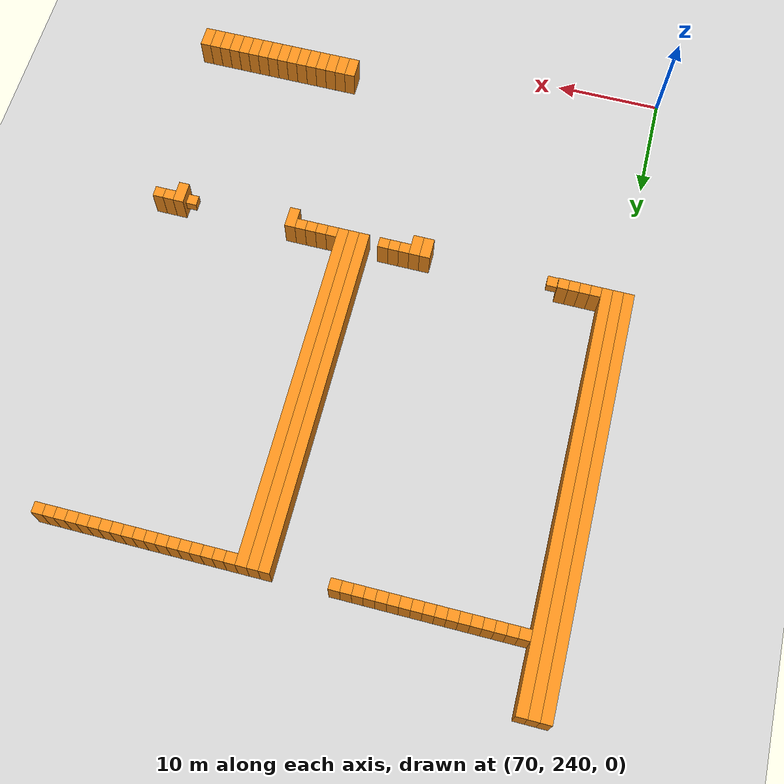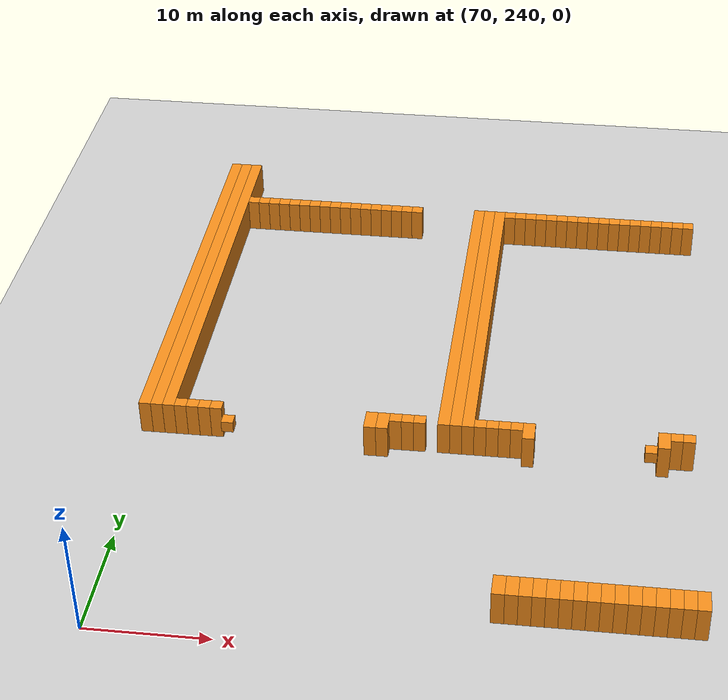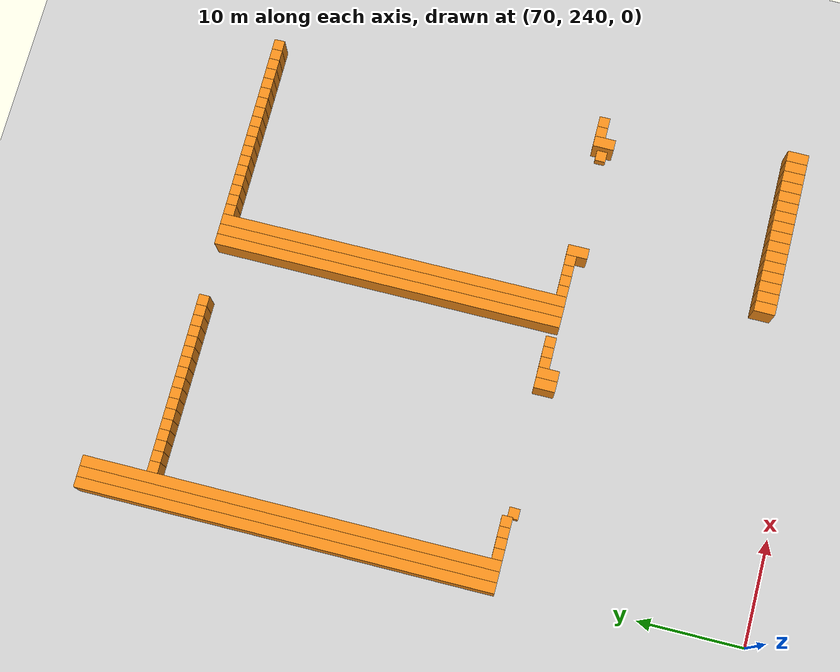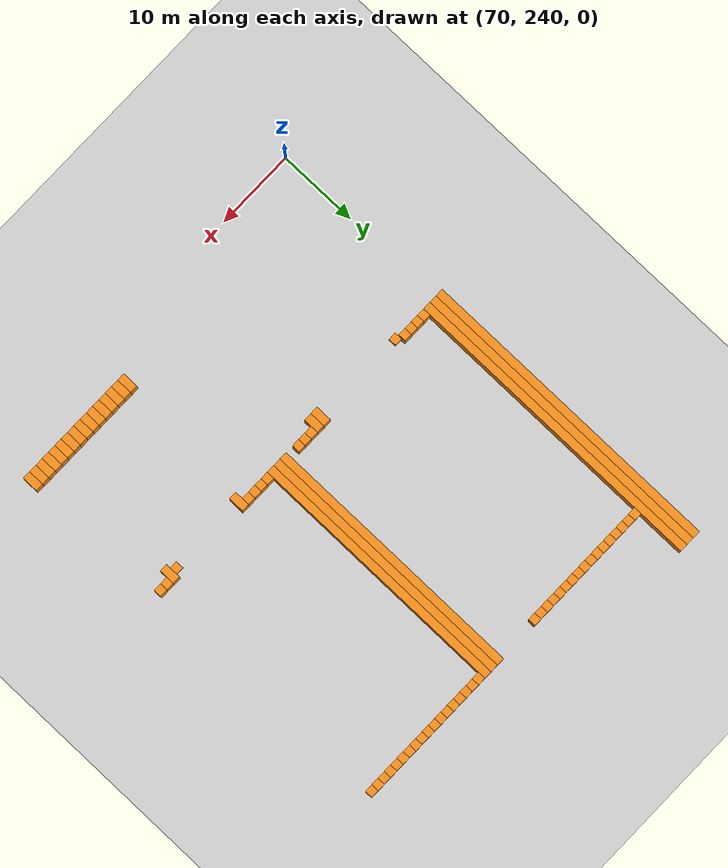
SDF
<sdf version="1.6">
 <world name="default">
  <include><uri>model://ground_plane</uri></include>
  <model name="unit_box_750">
   <pose>69.50   282.50     1.50 0 0 0</pose>
   <static>1</static>
   <link name="link">
    <inertial>
     <mass>5000</mass>
     <inertia><ixx>200</ixx><ixy>0</ixy><ixz>0</ixz><iyy>200</iyy><iyz>0</iyz><izz>200</izz></inertia>
    </inertial>
    <collision name="collision"><geometry><box><size>1 39 3</size></box></geometry></collision>
    <visual name="visual">
     <geometry><box><size>1 39 3</size></box></geometry>
     <material>
      <script><name>Gazebo/Orange</name><uri>file://media/materials/scripts/gazebo.material</uri></script>
     </material>
    </visual>
   </link>
  </model>
  <model name="unit_box_762">
   <pose>70.50   282.50     1.50 0 0 0</pose>
   <static>1</static>
   <link name="link">
    <inertial>
     <mass>5000</mass>
     <inertia><ixx>200</ixx><ixy>0</ixy><ixz>0</ixz><iyy>200</iyy><iyz>0</iyz><izz>200</izz></inertia>
    </inertial>
    <collision name="collision"><geometry><box><size>1 39 3</size></box></geometry></collision>
    <visual name="visual">
     <geometry><box><size>1 39 3</size></box></geometry>
     <material>
      <script><name>Gazebo/Orange</name><uri>file://media/materials/scripts/gazebo.material</uri></script>
     </material>
    </visual>
   </link>
  </model>
  <model name="unit_box_775">
   <pose>71.50   282.50     1.50 0 0 0</pose>
   <static>1</static>
   <link name="link">
    <inertial>
     <mass>5000</mass>
     <inertia><ixx>200</ixx><ixy>0</ixy><ixz>0</ixz><iyy>200</iyy><iyz>0</iyz><izz>200</izz></inertia>
    </inertial>
    <collision name="collision"><geometry><box><size>1 39 3</size></box></geometry></collision>
    <visual name="visual">
     <geometry><box><size>1 39 3</size></box></geometry>
     <material>
      <script><name>Gazebo/Orange</name><uri>file://media/materials/scripts/gazebo.material</uri></script>
     </material>
    </visual>
   </link>
  </model>
  <model name="unit_box_789">
   <pose>72.50   263.50     1.50 0 0 0</pose>
   <static>1</static>
   <link name="link">
    <inertial>
     <mass>5000</mass>
     <inertia><ixx>200</ixx><ixy>0</ixy><ixz>0</ixz><iyy>200</iyy><iyz>0</iyz><izz>200</izz></inertia>
    </inertial>
    <collision name="collision"><geometry><box><size>1 1 3</size></box></geometry></collision>
    <visual name="visual">
     <geometry><box><size>1 1 3</size></box></geometry>
     <material>
      <script><name>Gazebo/Orange</name><uri>file://media/materials/scripts/gazebo.material</uri></script>
     </material>
    </visual>
   </link>
  </model>
  <model name="unit_box_790">
   <pose>72.50   295.50     1.50 0 0 0</pose>
   <static>1</static>
   <link name="link">
    <inertial>
     <mass>5000</mass>
     <inertia><ixx>200</ixx><ixy>0</ixy><ixz>0</ixz><iyy>200</iyy><iyz>0</iyz><izz>200</izz></inertia>
    </inertial>
    <collision name="collision"><geometry><box><size>1 1 3</size></box></geometry></collision>
    <visual name="visual">
     <geometry><box><size>1 1 3</size></box></geometry>
     <material>
      <script><name>Gazebo/Orange</name><uri>file://media/materials/scripts/gazebo.material</uri></script>
     </material>
    </visual>
   </link>
  </model>
  <model name="unit_box_804">
   <pose>73.50   263.50     1.50 0 0 0</pose>
   <static>1</static>
   <link name="link">
    <inertial>
     <mass>5000</mass>
     <inertia><ixx>200</ixx><ixy>0</ixy><ixz>0</ixz><iyy>200</iyy><iyz>0</iyz><izz>200</izz></inertia>
    </inertial>
    <collision name="collision"><geometry><box><size>1 1 3</size></box></geometry></collision>
    <visual name="visual">
     <geometry><box><size>1 1 3</size></box></geometry>
     <material>
      <script><name>Gazebo/Orange</name><uri>file://media/materials/scripts/gazebo.material</uri></script>
     </material>
    </visual>
   </link>
  </model>
  <model name="unit_box_805">
   <pose>73.50   295.50     1.50 0 0 0</pose>
   <static>1</static>
   <link name="link">
    <inertial>
     <mass>5000</mass>
     <inertia><ixx>200</ixx><ixy>0</ixy><ixz>0</ixz><iyy>200</iyy><iyz>0</iyz><izz>200</izz></inertia>
    </inertial>
    <collision name="collision"><geometry><box><size>1 1 3</size></box></geometry></collision>
    <visual name="visual">
     <geometry><box><size>1 1 3</size></box></geometry>
     <material>
      <script><name>Gazebo/Orange</name><uri>file://media/materials/scripts/gazebo.material</uri></script>
     </material>
    </visual>
   </link>
  </model>
  <model name="unit_box_820">
   <pose>74.50   263.50     1.50 0 0 0</pose>
   <static>1</static>
   <link name="link">
    <inertial>
     <mass>5000</mass>
     <inertia><ixx>200</ixx><ixy>0</ixy><ixz>0</ixz><iyy>200</iyy><iyz>0</iyz><izz>200</izz></inertia>
    </inertial>
    <collision name="collision"><geometry><box><size>1 1 3</size></box></geometry></collision>
    <visual name="visual">
     <geometry><box><size>1 1 3</size></box></geometry>
     <material>
      <script><name>Gazebo/Orange</name><uri>file://media/materials/scripts/gazebo.material</uri></script>
     </material>
    </visual>
   </link>
  </model>
  <model name="unit_box_821">
   <pose>74.50   295.50     1.50 0 0 0</pose>
   <static>1</static>
   <link name="link">
    <inertial>
     <mass>5000</mass>
     <inertia><ixx>200</ixx><ixy>0</ixy><ixz>0</ixz><iyy>200</iyy><iyz>0</iyz><izz>200</izz></inertia>
    </inertial>
    <collision name="collision"><geometry><box><size>1 1 3</size></box></geometry></collision>
    <visual name="visual">
     <geometry><box><size>1 1 3</size></box></geometry>
     <material>
      <script><name>Gazebo/Orange</name><uri>file://media/materials/scripts/gazebo.material</uri></script>
     </material>
    </visual>
   </link>
  </model>
  <model name="unit_box_835">
   <pose>75.50   263.50     1.50 0 0 0</pose>
   <static>1</static>
   <link name="link">
    <inertial>
     <mass>5000</mass>
     <inertia><ixx>200</ixx><ixy>0</ixy><ixz>0</ixz><iyy>200</iyy><iyz>0</iyz><izz>200</izz></inertia>
    </inertial>
    <collision name="collision"><geometry><box><size>1 1 3</size></box></geometry></collision>
    <visual name="visual">
     <geometry><box><size>1 1 3</size></box></geometry>
     <material>
      <script><name>Gazebo/Orange</name><uri>file://media/materials/scripts/gazebo.material</uri></script>
     </material>
    </visual>
   </link>
  </model>
  <model name="unit_box_836">
   <pose>75.50   295.50     1.50 0 0 0</pose>
   <static>1</static>
   <link name="link">
    <inertial>
     <mass>5000</mass>
     <inertia><ixx>200</ixx><ixy>0</ixy><ixz>0</ixz><iyy>200</iyy><iyz>0</iyz><izz>200</izz></inertia>
    </inertial>
    <collision name="collision"><geometry><box><size>1 1 3</size></box></geometry></collision>
    <visual name="visual">
     <geometry><box><size>1 1 3</size></box></geometry>
     <material>
      <script><name>Gazebo/Orange</name><uri>file://media/materials/scripts/gazebo.material</uri></script>
     </material>
    </visual>
   </link>
  </model>
  <model name="unit_box_850">
   <pose>76.50   263.00     1.50 0 0 0</pose>
   <static>1</static>
   <link name="link">
    <inertial>
     <mass>5000</mass>
     <inertia><ixx>200</ixx><ixy>0</ixy><ixz>0</ixz><iyy>200</iyy><iyz>0</iyz><izz>200</izz></inertia>
    </inertial>
    <collision name="collision"><geometry><box><size>1 1 1</size></box></geometry></collision>
    <visual name="visual">
     <geometry><box><size>1 1 1</size></box></geometry>
     <material>
      <script><name>Gazebo/Orange</name><uri>file://media/materials/scripts/gazebo.material</uri></script>
     </material>
    </visual>
   </link>
  </model>
  <model name="unit_box_851">
   <pose>76.50   295.50     1.50 0 0 0</pose>
   <static>1</static>
   <link name="link">
    <inertial>
     <mass>5000</mass>
     <inertia><ixx>200</ixx><ixy>0</ixy><ixz>0</ixz><iyy>200</iyy><iyz>0</iyz><izz>200</izz></inertia>
    </inertial>
    <collision name="collision"><geometry><box><size>1 1 3</size></box></geometry></collision>
    <visual name="visual">
     <geometry><box><size>1 1 3</size></box></geometry>
     <material>
      <script><name>Gazebo/Orange</name><uri>file://media/materials/scripts/gazebo.material</uri></script>
     </material>
    </visual>
   </link>
  </model>
  <model name="unit_box_865">
   <pose>77.50   295.50     1.50 0 0 0</pose>
   <static>1</static>
   <link name="link">
    <inertial>
     <mass>5000</mass>
     <inertia><ixx>200</ixx><ixy>0</ixy><ixz>0</ixz><iyy>200</iyy><iyz>0</iyz><izz>200</izz></inertia>
    </inertial>
    <collision name="collision"><geometry><box><size>1 1 3</size></box></geometry></collision>
    <visual name="visual">
     <geometry><box><size>1 1 3</size></box></geometry>
     <material>
      <script><name>Gazebo/Orange</name><uri>file://media/materials/scripts/gazebo.material</uri></script>
     </material>
    </visual>
   </link>
  </model>
  <model name="unit_box_878">
   <pose>78.50   295.50     1.50 0 0 0</pose>
   <static>1</static>
   <link name="link">
    <inertial>
     <mass>5000</mass>
     <inertia><ixx>200</ixx><ixy>0</ixy><ixz>0</ixz><iyy>200</iyy><iyz>0</iyz><izz>200</izz></inertia>
    </inertial>
    <collision name="collision"><geometry><box><size>1 1 3</size></box></geometry></collision>
    <visual name="visual">
     <geometry><box><size>1 1 3</size></box></geometry>
     <material>
      <script><name>Gazebo/Orange</name><uri>file://media/materials/scripts/gazebo.material</uri></script>
     </material>
    </visual>
   </link>
  </model>
  <model name="unit_box_891">
   <pose>79.50   295.50     1.50 0 0 0</pose>
   <static>1</static>
   <link name="link">
    <inertial>
     <mass>5000</mass>
     <inertia><ixx>200</ixx><ixy>0</ixy><ixz>0</ixz><iyy>200</iyy><iyz>0</iyz><izz>200</izz></inertia>
    </inertial>
    <collision name="collision"><geometry><box><size>1 1 3</size></box></geometry></collision>
    <visual name="visual">
     <geometry><box><size>1 1 3</size></box></geometry>
     <material>
      <script><name>Gazebo/Orange</name><uri>file://media/materials/scripts/gazebo.material</uri></script>
     </material>
    </visual>
   </link>
  </model>
  <model name="unit_box_904">
   <pose>80.50   295.50     1.50 0 0 0</pose>
   <static>1</static>
   <link name="link">
    <inertial>
     <mass>5000</mass>
     <inertia><ixx>200</ixx><ixy>0</ixy><ixz>0</ixz><iyy>200</iyy><iyz>0</iyz><izz>200</izz></inertia>
    </inertial>
    <collision name="collision"><geometry><box><size>1 1 3</size></box></geometry></collision>
    <visual name="visual">
     <geometry><box><size>1 1 3</size></box></geometry>
     <material>
      <script><name>Gazebo/Orange</name><uri>file://media/materials/scripts/gazebo.material</uri></script>
     </material>
    </visual>
   </link>
  </model>
  <model name="unit_box_917">
   <pose>81.50   295.50     1.50 0 0 0</pose>
   <static>1</static>
   <link name="link">
    <inertial>
     <mass>5000</mass>
     <inertia><ixx>200</ixx><ixy>0</ixy><ixz>0</ixz><iyy>200</iyy><iyz>0</iyz><izz>200</izz></inertia>
    </inertial>
    <collision name="collision"><geometry><box><size>1 1 3</size></box></geometry></collision>
    <visual name="visual">
     <geometry><box><size>1 1 3</size></box></geometry>
     <material>
      <script><name>Gazebo/Orange</name><uri>file://media/materials/scripts/gazebo.material</uri></script>
     </material>
    </visual>
   </link>
  </model>
  <model name="unit_box_930">
   <pose>82.50   295.50     1.50 0 0 0</pose>
   <static>1</static>
   <link name="link">
    <inertial>
     <mass>5000</mass>
     <inertia><ixx>200</ixx><ixy>0</ixy><ixz>0</ixz><iyy>200</iyy><iyz>0</iyz><izz>200</izz></inertia>
    </inertial>
    <collision name="collision"><geometry><box><size>1 1 3</size></box></geometry></collision>
    <visual name="visual">
     <geometry><box><size>1 1 3</size></box></geometry>
     <material>
      <script><name>Gazebo/Orange</name><uri>file://media/materials/scripts/gazebo.material</uri></script>
     </material>
    </visual>
   </link>
  </model>
  <model name="unit_box_944">
   <pose>83.50   295.50     1.50 0 0 0</pose>
   <static>1</static>
   <link name="link">
    <inertial>
     <mass>5000</mass>
     <inertia><ixx>200</ixx><ixy>0</ixy><ixz>0</ixz><iyy>200</iyy><iyz>0</iyz><izz>200</izz></inertia>
    </inertial>
    <collision name="collision"><geometry><box><size>1 1 3</size></box></geometry></collision>
    <visual name="visual">
     <geometry><box><size>1 1 3</size></box></geometry>
     <material>
      <script><name>Gazebo/Orange</name><uri>file://media/materials/scripts/gazebo.material</uri></script>
     </material>
    </visual>
   </link>
  </model>
  <model name="unit_box_958">
   <pose>84.50   295.50     1.50 0 0 0</pose>
   <static>1</static>
   <link name="link">
    <inertial>
     <mass>5000</mass>
     <inertia><ixx>200</ixx><ixy>0</ixy><ixz>0</ixz><iyy>200</iyy><iyz>0</iyz><izz>200</izz></inertia>
    </inertial>
    <collision name="collision"><geometry><box><size>1 1 3</size></box></geometry></collision>
    <visual name="visual">
     <geometry><box><size>1 1 3</size></box></geometry>
     <material>
      <script><name>Gazebo/Orange</name><uri>file://media/materials/scripts/gazebo.material</uri></script>
     </material>
    </visual>
   </link>
  </model>
  <model name="unit_box_970">
   <pose>85.50   295.50     1.50 0 0 0</pose>
   <static>1</static>
   <link name="link">
    <inertial>
     <mass>5000</mass>
     <inertia><ixx>200</ixx><ixy>0</ixy><ixz>0</ixz><iyy>200</iyy><iyz>0</iyz><izz>200</izz></inertia>
    </inertial>
    <collision name="collision"><geometry><box><size>1 1 3</size></box></geometry></collision>
    <visual name="visual">
     <geometry><box><size>1 1 3</size></box></geometry>
     <material>
      <script><name>Gazebo/Orange</name><uri>file://media/materials/scripts/gazebo.material</uri></script>
     </material>
    </visual>
   </link>
  </model>
  <model name="unit_box_985">
   <pose>86.50   295.50     1.50 0 0 0</pose>
   <static>1</static>
   <link name="link">
    <inertial>
     <mass>5000</mass>
     <inertia><ixx>200</ixx><ixy>0</ixy><ixz>0</ixz><iyy>200</iyy><iyz>0</iyz><izz>200</izz></inertia>
    </inertial>
    <collision name="collision"><geometry><box><size>1 1 3</size></box></geometry></collision>
    <visual name="visual">
     <geometry><box><size>1 1 3</size></box></geometry>
     <material>
      <script><name>Gazebo/Orange</name><uri>file://media/materials/scripts/gazebo.material</uri></script>
     </material>
    </visual>
   </link>
  </model>
  <model name="unit_box_995">
   <pose>87.50   295.50     1.50 0 0 0</pose>
   <static>1</static>
   <link name="link">
    <inertial>
     <mass>5000</mass>
     <inertia><ixx>200</ixx><ixy>0</ixy><ixz>0</ixz><iyy>200</iyy><iyz>0</iyz><izz>200</izz></inertia>
    </inertial>
    <collision name="collision"><geometry><box><size>1 1 3</size></box></geometry></collision>
    <visual name="visual">
     <geometry><box><size>1 1 3</size></box></geometry>
     <material>
      <script><name>Gazebo/Orange</name><uri>file://media/materials/scripts/gazebo.material</uri></script>
     </material>
    </visual>
   </link>
  </model>
  <model name="unit_box_1005">
   <pose>88.50   263.00     1.50 0 0 0</pose>
   <static>1</static>
   <link name="link">
    <inertial>
     <mass>5000</mass>
     <inertia><ixx>200</ixx><ixy>0</ixy><ixz>0</ixz><iyy>200</iyy><iyz>0</iyz><izz>200</izz></inertia>
    </inertial>
    <collision name="collision"><geometry><box><size>1 2 3</size></box></geometry></collision>
    <visual name="visual">
     <geometry><box><size>1 2 3</size></box></geometry>
     <material>
      <script><name>Gazebo/Orange</name><uri>file://media/materials/scripts/gazebo.material</uri></script>
     </material>
    </visual>
   </link>
  </model>
  <model name="unit_box_1006">
   <pose>88.50   295.50     1.50 0 0 0</pose>
   <static>1</static>
   <link name="link">
    <inertial>
     <mass>5000</mass>
     <inertia><ixx>200</ixx><ixy>0</ixy><ixz>0</ixz><iyy>200</iyy><iyz>0</iyz><izz>200</izz></inertia>
    </inertial>
    <collision name="collision"><geometry><box><size>1 1 3</size></box></geometry></collision>
    <visual name="visual">
     <geometry><box><size>1 1 3</size></box></geometry>
     <material>
      <script><name>Gazebo/Orange</name><uri>file://media/materials/scripts/gazebo.material</uri></script>
     </material>
    </visual>
   </link>
  </model>
  <model name="unit_box_1016">
   <pose>89.50   263.00     1.50 0 0 0</pose>
   <static>1</static>
   <link name="link">
    <inertial>
     <mass>5000</mass>
     <inertia><ixx>200</ixx><ixy>0</ixy><ixz>0</ixz><iyy>200</iyy><iyz>0</iyz><izz>200</izz></inertia>
    </inertial>
    <collision name="collision"><geometry><box><size>1 2 3</size></box></geometry></collision>
    <visual name="visual">
     <geometry><box><size>1 2 3</size></box></geometry>
     <material>
      <script><name>Gazebo/Orange</name><uri>file://media/materials/scripts/gazebo.material</uri></script>
     </material>
    </visual>
   </link>
  </model>
  <model name="unit_box_1025">
   <pose>90.50   263.50     1.50 0 0 0</pose>
   <static>1</static>
   <link name="link">
    <inertial>
     <mass>5000</mass>
     <inertia><ixx>200</ixx><ixy>0</ixy><ixz>0</ixz><iyy>200</iyy><iyz>0</iyz><izz>200</izz></inertia>
    </inertial>
    <collision name="collision"><geometry><box><size>1 1 3</size></box></geometry></collision>
    <visual name="visual">
     <geometry><box><size>1 1 3</size></box></geometry>
     <material>
      <script><name>Gazebo/Orange</name><uri>file://media/materials/scripts/gazebo.material</uri></script>
     </material>
    </visual>
   </link>
  </model>
  <model name="unit_box_1034">
   <pose>91.50   263.50     1.50 0 0 0</pose>
   <static>1</static>
   <link name="link">
    <inertial>
     <mass>5000</mass>
     <inertia><ixx>200</ixx><ixy>0</ixy><ixz>0</ixz><iyy>200</iyy><iyz>0</iyz><izz>200</izz></inertia>
    </inertial>
    <collision name="collision"><geometry><box><size>1 1 3</size></box></geometry></collision>
    <visual name="visual">
     <geometry><box><size>1 1 3</size></box></geometry>
     <material>
      <script><name>Gazebo/Orange</name><uri>file://media/materials/scripts/gazebo.material</uri></script>
     </material>
    </visual>
   </link>
  </model>
  <model name="unit_box_1043">
   <pose>92.50   263.50     1.50 0 0 0</pose>
   <static>1</static>
   <link name="link">
    <inertial>
     <mass>5000</mass>
     <inertia><ixx>200</ixx><ixy>0</ixy><ixz>0</ixz><iyy>200</iyy><iyz>0</iyz><izz>200</izz></inertia>
    </inertial>
    <collision name="collision"><geometry><box><size>1 1 3</size></box></geometry></collision>
    <visual name="visual">
     <geometry><box><size>1 1 3</size></box></geometry>
     <material>
      <script><name>Gazebo/Orange</name><uri>file://media/materials/scripts/gazebo.material</uri></script>
     </material>
    </visual>
   </link>
  </model>
  <model name="unit_box_1060">
   <pose>94.50   279.50     1.50 0 0 0</pose>
   <static>1</static>
   <link name="link">
    <inertial>
     <mass>5000</mass>
     <inertia><ixx>200</ixx><ixy>0</ixy><ixz>0</ixz><iyy>200</iyy><iyz>0</iyz><izz>200</izz></inertia>
    </inertial>
    <collision name="collision"><geometry><box><size>1 33 3</size></box></geometry></collision>
    <visual name="visual">
     <geometry><box><size>1 33 3</size></box></geometry>
     <material>
      <script><name>Gazebo/Orange</name><uri>file://media/materials/scripts/gazebo.material</uri></script>
     </material>
    </visual>
   </link>
  </model>
  <model name="unit_box_1071">
   <pose>95.50   279.50     1.50 0 0 0</pose>
   <static>1</static>
   <link name="link">
    <inertial>
     <mass>5000</mass>
     <inertia><ixx>200</ixx><ixy>0</ixy><ixz>0</ixz><iyy>200</iyy><iyz>0</iyz><izz>200</izz></inertia>
    </inertial>
    <collision name="collision"><geometry><box><size>1 33 3</size></box></geometry></collision>
    <visual name="visual">
     <geometry><box><size>1 33 3</size></box></geometry>
     <material>
      <script><name>Gazebo/Orange</name><uri>file://media/materials/scripts/gazebo.material</uri></script>
     </material>
    </visual>
   </link>
  </model>
  <model name="unit_box_1083">
   <pose>96.50   279.50     1.50 0 0 0</pose>
   <static>1</static>
   <link name="link">
    <inertial>
     <mass>5000</mass>
     <inertia><ixx>200</ixx><ixy>0</ixy><ixz>0</ixz><iyy>200</iyy><iyz>0</iyz><izz>200</izz></inertia>
    </inertial>
    <collision name="collision"><geometry><box><size>1 33 3</size></box></geometry></collision>
    <visual name="visual">
     <geometry><box><size>1 33 3</size></box></geometry>
     <material>
      <script><name>Gazebo/Orange</name><uri>file://media/materials/scripts/gazebo.material</uri></script>
     </material>
    </visual>
   </link>
  </model>
  <model name="unit_box_1092">
   <pose>97.50   263.50     1.50 0 0 0</pose>
   <static>1</static>
   <link name="link">
    <inertial>
     <mass>5000</mass>
     <inertia><ixx>200</ixx><ixy>0</ixy><ixz>0</ixz><iyy>200</iyy><iyz>0</iyz><izz>200</izz></inertia>
    </inertial>
    <collision name="collision"><geometry><box><size>1 1 3</size></box></geometry></collision>
    <visual name="visual">
     <geometry><box><size>1 1 3</size></box></geometry>
     <material>
      <script><name>Gazebo/Orange</name><uri>file://media/materials/scripts/gazebo.material</uri></script>
     </material>
    </visual>
   </link>
  </model>
  <model name="unit_box_1093">
   <pose>97.50   295.50     1.50 0 0 0</pose>
   <static>1</static>
   <link name="link">
    <inertial>
     <mass>5000</mass>
     <inertia><ixx>200</ixx><ixy>0</ixy><ixz>0</ixz><iyy>200</iyy><iyz>0</iyz><izz>200</izz></inertia>
    </inertial>
    <collision name="collision"><geometry><box><size>1 1 3</size></box></geometry></collision>
    <visual name="visual">
     <geometry><box><size>1 1 3</size></box></geometry>
     <material>
      <script><name>Gazebo/Orange</name><uri>file://media/materials/scripts/gazebo.material</uri></script>
     </material>
    </visual>
   </link>
  </model>
  <model name="unit_box_1103">
   <pose>98.50   263.50     1.50 0 0 0</pose>
   <static>1</static>
   <link name="link">
    <inertial>
     <mass>5000</mass>
     <inertia><ixx>200</ixx><ixy>0</ixy><ixz>0</ixz><iyy>200</iyy><iyz>0</iyz><izz>200</izz></inertia>
    </inertial>
    <collision name="collision"><geometry><box><size>1 1 3</size></box></geometry></collision>
    <visual name="visual">
     <geometry><box><size>1 1 3</size></box></geometry>
     <material>
      <script><name>Gazebo/Orange</name><uri>file://media/materials/scripts/gazebo.material</uri></script>
     </material>
    </visual>
   </link>
  </model>
  <model name="unit_box_1104">
   <pose>98.50   295.50     1.50 0 0 0</pose>
   <static>1</static>
   <link name="link">
    <inertial>
     <mass>5000</mass>
     <inertia><ixx>200</ixx><ixy>0</ixy><ixz>0</ixz><iyy>200</iyy><iyz>0</iyz><izz>200</izz></inertia>
    </inertial>
    <collision name="collision"><geometry><box><size>1 1 3</size></box></geometry></collision>
    <visual name="visual">
     <geometry><box><size>1 1 3</size></box></geometry>
     <material>
      <script><name>Gazebo/Orange</name><uri>file://media/materials/scripts/gazebo.material</uri></script>
     </material>
    </visual>
   </link>
  </model>
  <model name="unit_box_1115">
   <pose>99.50   263.50     1.50 0 0 0</pose>
   <static>1</static>
   <link name="link">
    <inertial>
     <mass>5000</mass>
     <inertia><ixx>200</ixx><ixy>0</ixy><ixz>0</ixz><iyy>200</iyy><iyz>0</iyz><izz>200</izz></inertia>
    </inertial>
    <collision name="collision"><geometry><box><size>1 1 3</size></box></geometry></collision>
    <visual name="visual">
     <geometry><box><size>1 1 3</size></box></geometry>
     <material>
      <script><name>Gazebo/Orange</name><uri>file://media/materials/scripts/gazebo.material</uri></script>
     </material>
    </visual>
   </link>
  </model>
  <model name="unit_box_1116">
   <pose>99.50   295.50     1.50 0 0 0</pose>
   <static>1</static>
   <link name="link">
    <inertial>
     <mass>5000</mass>
     <inertia><ixx>200</ixx><ixy>0</ixy><ixz>0</ixz><iyy>200</iyy><iyz>0</iyz><izz>200</izz></inertia>
    </inertial>
    <collision name="collision"><geometry><box><size>1 1 3</size></box></geometry></collision>
    <visual name="visual">
     <geometry><box><size>1 1 3</size></box></geometry>
     <material>
      <script><name>Gazebo/Orange</name><uri>file://media/materials/scripts/gazebo.material</uri></script>
     </material>
    </visual>
   </link>
  </model>
  <model name="unit_box_1126">
   <pose>100.50   245.00     1.50 0 0 0</pose>
   <static>1</static>
   <link name="link">
    <inertial>
     <mass>5000</mass>
     <inertia><ixx>200</ixx><ixy>0</ixy><ixz>0</ixz><iyy>200</iyy><iyz>0</iyz><izz>200</izz></inertia>
    </inertial>
    <collision name="collision"><geometry><box><size>1 2 3</size></box></geometry></collision>
    <visual name="visual">
     <geometry><box><size>1 2 3</size></box></geometry>
     <material>
      <script><name>Gazebo/Orange</name><uri>file://media/materials/scripts/gazebo.material</uri></script>
     </material>
    </visual>
   </link>
  </model>
  <model name="unit_box_1127">
   <pose>100.50   263.50     1.50 0 0 0</pose>
   <static>1</static>
   <link name="link">
    <inertial>
     <mass>5000</mass>
     <inertia><ixx>200</ixx><ixy>0</ixy><ixz>0</ixz><iyy>200</iyy><iyz>0</iyz><izz>200</izz></inertia>
    </inertial>
    <collision name="collision"><geometry><box><size>1 1 3</size></box></geometry></collision>
    <visual name="visual">
     <geometry><box><size>1 1 3</size></box></geometry>
     <material>
      <script><name>Gazebo/Orange</name><uri>file://media/materials/scripts/gazebo.material</uri></script>
     </material>
    </visual>
   </link>
  </model>
  <model name="unit_box_1128">
   <pose>100.50   295.50     1.50 0 0 0</pose>
   <static>1</static>
   <link name="link">
    <inertial>
     <mass>5000</mass>
     <inertia><ixx>200</ixx><ixy>0</ixy><ixz>0</ixz><iyy>200</iyy><iyz>0</iyz><izz>200</izz></inertia>
    </inertial>
    <collision name="collision"><geometry><box><size>1 1 3</size></box></geometry></collision>
    <visual name="visual">
     <geometry><box><size>1 1 3</size></box></geometry>
     <material>
      <script><name>Gazebo/Orange</name><uri>file://media/materials/scripts/gazebo.material</uri></script>
     </material>
    </visual>
   </link>
  </model>
  <model name="unit_box_1138">
   <pose>101.50   245.00     1.50 0 0 0</pose>
   <static>1</static>
   <link name="link">
    <inertial>
     <mass>5000</mass>
     <inertia><ixx>200</ixx><ixy>0</ixy><ixz>0</ixz><iyy>200</iyy><iyz>0</iyz><izz>200</izz></inertia>
    </inertial>
    <collision name="collision"><geometry><box><size>1 2 3</size></box></geometry></collision>
    <visual name="visual">
     <geometry><box><size>1 2 3</size></box></geometry>
     <material>
      <script><name>Gazebo/Orange</name><uri>file://media/materials/scripts/gazebo.material</uri></script>
     </material>
    </visual>
   </link>
  </model>
  <model name="unit_box_1139">
   <pose>101.50   263.00     1.50 0 0 0</pose>
   <static>1</static>
   <link name="link">
    <inertial>
     <mass>5000</mass>
     <inertia><ixx>200</ixx><ixy>0</ixy><ixz>0</ixz><iyy>200</iyy><iyz>0</iyz><izz>200</izz></inertia>
    </inertial>
    <collision name="collision"><geometry><box><size>1 2 3</size></box></geometry></collision>
    <visual name="visual">
     <geometry><box><size>1 2 3</size></box></geometry>
     <material>
      <script><name>Gazebo/Orange</name><uri>file://media/materials/scripts/gazebo.material</uri></script>
     </material>
    </visual>
   </link>
  </model>
  <model name="unit_box_1140">
   <pose>101.50   295.50     1.50 0 0 0</pose>
   <static>1</static>
   <link name="link">
    <inertial>
     <mass>5000</mass>
     <inertia><ixx>200</ixx><ixy>0</ixy><ixz>0</ixz><iyy>200</iyy><iyz>0</iyz><izz>200</izz></inertia>
    </inertial>
    <collision name="collision"><geometry><box><size>1 1 3</size></box></geometry></collision>
    <visual name="visual">
     <geometry><box><size>1 1 3</size></box></geometry>
     <material>
      <script><name>Gazebo/Orange</name><uri>file://media/materials/scripts/gazebo.material</uri></script>
     </material>
    </visual>
   </link>
  </model>
  <model name="unit_box_1149">
   <pose>102.50   245.00     1.50 0 0 0</pose>
   <static>1</static>
   <link name="link">
    <inertial>
     <mass>5000</mass>
     <inertia><ixx>200</ixx><ixy>0</ixy><ixz>0</ixz><iyy>200</iyy><iyz>0</iyz><izz>200</izz></inertia>
    </inertial>
    <collision name="collision"><geometry><box><size>1 2 3</size></box></geometry></collision>
    <visual name="visual">
     <geometry><box><size>1 2 3</size></box></geometry>
     <material>
      <script><name>Gazebo/Orange</name><uri>file://media/materials/scripts/gazebo.material</uri></script>
     </material>
    </visual>
   </link>
  </model>
  <model name="unit_box_1150">
   <pose>102.50   295.50     1.50 0 0 0</pose>
   <static>1</static>
   <link name="link">
    <inertial>
     <mass>5000</mass>
     <inertia><ixx>200</ixx><ixy>0</ixy><ixz>0</ixz><iyy>200</iyy><iyz>0</iyz><izz>200</izz></inertia>
    </inertial>
    <collision name="collision"><geometry><box><size>1 1 3</size></box></geometry></collision>
    <visual name="visual">
     <geometry><box><size>1 1 3</size></box></geometry>
     <material>
      <script><name>Gazebo/Orange</name><uri>file://media/materials/scripts/gazebo.material</uri></script>
     </material>
    </visual>
   </link>
  </model>
  <model name="unit_box_1159">
   <pose>103.50   245.00     1.50 0 0 0</pose>
   <static>1</static>
   <link name="link">
    <inertial>
     <mass>5000</mass>
     <inertia><ixx>200</ixx><ixy>0</ixy><ixz>0</ixz><iyy>200</iyy><iyz>0</iyz><izz>200</izz></inertia>
    </inertial>
    <collision name="collision"><geometry><box><size>1 2 3</size></box></geometry></collision>
    <visual name="visual">
     <geometry><box><size>1 2 3</size></box></geometry>
     <material>
      <script><name>Gazebo/Orange</name><uri>file://media/materials/scripts/gazebo.material</uri></script>
     </material>
    </visual>
   </link>
  </model>
  <model name="unit_box_1160">
   <pose>103.50   295.50     1.50 0 0 0</pose>
   <static>1</static>
   <link name="link">
    <inertial>
     <mass>5000</mass>
     <inertia><ixx>200</ixx><ixy>0</ixy><ixz>0</ixz><iyy>200</iyy><iyz>0</iyz><izz>200</izz></inertia>
    </inertial>
    <collision name="collision"><geometry><box><size>1 1 3</size></box></geometry></collision>
    <visual name="visual">
     <geometry><box><size>1 1 3</size></box></geometry>
     <material>
      <script><name>Gazebo/Orange</name><uri>file://media/materials/scripts/gazebo.material</uri></script>
     </material>
    </visual>
   </link>
  </model>
  <model name="unit_box_1169">
   <pose>104.50   245.00     1.50 0 0 0</pose>
   <static>1</static>
   <link name="link">
    <inertial>
     <mass>5000</mass>
     <inertia><ixx>200</ixx><ixy>0</ixy><ixz>0</ixz><iyy>200</iyy><iyz>0</iyz><izz>200</izz></inertia>
    </inertial>
    <collision name="collision"><geometry><box><size>1 2 3</size></box></geometry></collision>
    <visual name="visual">
     <geometry><box><size>1 2 3</size></box></geometry>
     <material>
      <script><name>Gazebo/Orange</name><uri>file://media/materials/scripts/gazebo.material</uri></script>
     </material>
    </visual>
   </link>
  </model>
  <model name="unit_box_1170">
   <pose>104.50   295.50     1.50 0 0 0</pose>
   <static>1</static>
   <link name="link">
    <inertial>
     <mass>5000</mass>
     <inertia><ixx>200</ixx><ixy>0</ixy><ixz>0</ixz><iyy>200</iyy><iyz>0</iyz><izz>200</izz></inertia>
    </inertial>
    <collision name="collision"><geometry><box><size>1 1 3</size></box></geometry></collision>
    <visual name="visual">
     <geometry><box><size>1 1 3</size></box></geometry>
     <material>
      <script><name>Gazebo/Orange</name><uri>file://media/materials/scripts/gazebo.material</uri></script>
     </material>
    </visual>
   </link>
  </model>
  <model name="unit_box_1179">
   <pose>105.50   245.00     1.50 0 0 0</pose>
   <static>1</static>
   <link name="link">
    <inertial>
     <mass>5000</mass>
     <inertia><ixx>200</ixx><ixy>0</ixy><ixz>0</ixz><iyy>200</iyy><iyz>0</iyz><izz>200</izz></inertia>
    </inertial>
    <collision name="collision"><geometry><box><size>1 2 3</size></box></geometry></collision>
    <visual name="visual">
     <geometry><box><size>1 2 3</size></box></geometry>
     <material>
      <script><name>Gazebo/Orange</name><uri>file://media/materials/scripts/gazebo.material</uri></script>
     </material>
    </visual>
   </link>
  </model>
  <model name="unit_box_1180">
   <pose>105.50   295.50     1.50 0 0 0</pose>
   <static>1</static>
   <link name="link">
    <inertial>
     <mass>5000</mass>
     <inertia><ixx>200</ixx><ixy>0</ixy><ixz>0</ixz><iyy>200</iyy><iyz>0</iyz><izz>200</izz></inertia>
    </inertial>
    <collision name="collision"><geometry><box><size>1 1 3</size></box></geometry></collision>
    <visual name="visual">
     <geometry><box><size>1 1 3</size></box></geometry>
     <material>
      <script><name>Gazebo/Orange</name><uri>file://media/materials/scripts/gazebo.material</uri></script>
     </material>
    </visual>
   </link>
  </model>
  <model name="unit_box_1188">
   <pose>106.50   245.00     1.50 0 0 0</pose>
   <static>1</static>
   <link name="link">
    <inertial>
     <mass>5000</mass>
     <inertia><ixx>200</ixx><ixy>0</ixy><ixz>0</ixz><iyy>200</iyy><iyz>0</iyz><izz>200</izz></inertia>
    </inertial>
    <collision name="collision"><geometry><box><size>1 2 3</size></box></geometry></collision>
    <visual name="visual">
     <geometry><box><size>1 2 3</size></box></geometry>
     <material>
      <script><name>Gazebo/Orange</name><uri>file://media/materials/scripts/gazebo.material</uri></script>
     </material>
    </visual>
   </link>
  </model>
  <model name="unit_box_1189">
   <pose>106.50   295.50     1.50 0 0 0</pose>
   <static>1</static>
   <link name="link">
    <inertial>
     <mass>5000</mass>
     <inertia><ixx>200</ixx><ixy>0</ixy><ixz>0</ixz><iyy>200</iyy><iyz>0</iyz><izz>200</izz></inertia>
    </inertial>
    <collision name="collision"><geometry><box><size>1 1 3</size></box></geometry></collision>
    <visual name="visual">
     <geometry><box><size>1 1 3</size></box></geometry>
     <material>
      <script><name>Gazebo/Orange</name><uri>file://media/materials/scripts/gazebo.material</uri></script>
     </material>
    </visual>
   </link>
  </model>
  <model name="unit_box_1197">
   <pose>107.50   245.00     1.50 0 0 0</pose>
   <static>1</static>
   <link name="link">
    <inertial>
     <mass>5000</mass>
     <inertia><ixx>200</ixx><ixy>0</ixy><ixz>0</ixz><iyy>200</iyy><iyz>0</iyz><izz>200</izz></inertia>
    </inertial>
    <collision name="collision"><geometry><box><size>1 2 3</size></box></geometry></collision>
    <visual name="visual">
     <geometry><box><size>1 2 3</size></box></geometry>
     <material>
      <script><name>Gazebo/Orange</name><uri>file://media/materials/scripts/gazebo.material</uri></script>
     </material>
    </visual>
   </link>
  </model>
  <model name="unit_box_1198">
   <pose>107.50   295.50     1.50 0 0 0</pose>
   <static>1</static>
   <link name="link">
    <inertial>
     <mass>5000</mass>
     <inertia><ixx>200</ixx><ixy>0</ixy><ixz>0</ixz><iyy>200</iyy><iyz>0</iyz><izz>200</izz></inertia>
    </inertial>
    <collision name="collision"><geometry><box><size>1 1 3</size></box></geometry></collision>
    <visual name="visual">
     <geometry><box><size>1 1 3</size></box></geometry>
     <material>
      <script><name>Gazebo/Orange</name><uri>file://media/materials/scripts/gazebo.material</uri></script>
     </material>
    </visual>
   </link>
  </model>
  <model name="unit_box_1206">
   <pose>108.50   245.00     1.50 0 0 0</pose>
   <static>1</static>
   <link name="link">
    <inertial>
     <mass>5000</mass>
     <inertia><ixx>200</ixx><ixy>0</ixy><ixz>0</ixz><iyy>200</iyy><iyz>0</iyz><izz>200</izz></inertia>
    </inertial>
    <collision name="collision"><geometry><box><size>1 2 3</size></box></geometry></collision>
    <visual name="visual">
     <geometry><box><size>1 2 3</size></box></geometry>
     <material>
      <script><name>Gazebo/Orange</name><uri>file://media/materials/scripts/gazebo.material</uri></script>
     </material>
    </visual>
   </link>
  </model>
  <model name="unit_box_1207">
   <pose>108.50   295.50     1.50 0 0 0</pose>
   <static>1</static>
   <link name="link">
    <inertial>
     <mass>5000</mass>
     <inertia><ixx>200</ixx><ixy>0</ixy><ixz>0</ixz><iyy>200</iyy><iyz>0</iyz><izz>200</izz></inertia>
    </inertial>
    <collision name="collision"><geometry><box><size>1 1 3</size></box></geometry></collision>
    <visual name="visual">
     <geometry><box><size>1 1 3</size></box></geometry>
     <material>
      <script><name>Gazebo/Orange</name><uri>file://media/materials/scripts/gazebo.material</uri></script>
     </material>
    </visual>
   </link>
  </model>
  <model name="unit_box_1215">
   <pose>109.50   245.00     1.50 0 0 0</pose>
   <static>1</static>
   <link name="link">
    <inertial>
     <mass>5000</mass>
     <inertia><ixx>200</ixx><ixy>0</ixy><ixz>0</ixz><iyy>200</iyy><iyz>0</iyz><izz>200</izz></inertia>
    </inertial>
    <collision name="collision"><geometry><box><size>1 2 3</size></box></geometry></collision>
    <visual name="visual">
     <geometry><box><size>1 2 3</size></box></geometry>
     <material>
      <script><name>Gazebo/Orange</name><uri>file://media/materials/scripts/gazebo.material</uri></script>
     </material>
    </visual>
   </link>
  </model>
  <model name="unit_box_1216">
   <pose>109.50   295.50     1.50 0 0 0</pose>
   <static>1</static>
   <link name="link">
    <inertial>
     <mass>5000</mass>
     <inertia><ixx>200</ixx><ixy>0</ixy><ixz>0</ixz><iyy>200</iyy><iyz>0</iyz><izz>200</izz></inertia>
    </inertial>
    <collision name="collision"><geometry><box><size>1 1 3</size></box></geometry></collision>
    <visual name="visual">
     <geometry><box><size>1 1 3</size></box></geometry>
     <material>
      <script><name>Gazebo/Orange</name><uri>file://media/materials/scripts/gazebo.material</uri></script>
     </material>
    </visual>
   </link>
  </model>
  <model name="unit_box_1224">
   <pose>110.50   245.00     1.50 0 0 0</pose>
   <static>1</static>
   <link name="link">
    <inertial>
     <mass>5000</mass>
     <inertia><ixx>200</ixx><ixy>0</ixy><ixz>0</ixz><iyy>200</iyy><iyz>0</iyz><izz>200</izz></inertia>
    </inertial>
    <collision name="collision"><geometry><box><size>1 2 3</size></box></geometry></collision>
    <visual name="visual">
     <geometry><box><size>1 2 3</size></box></geometry>
     <material>
      <script><name>Gazebo/Orange</name><uri>file://media/materials/scripts/gazebo.material</uri></script>
     </material>
    </visual>
   </link>
  </model>
  <model name="unit_box_1225">
   <pose>110.50   295.50     1.50 0 0 0</pose>
   <static>1</static>
   <link name="link">
    <inertial>
     <mass>5000</mass>
     <inertia><ixx>200</ixx><ixy>0</ixy><ixz>0</ixz><iyy>200</iyy><iyz>0</iyz><izz>200</izz></inertia>
    </inertial>
    <collision name="collision"><geometry><box><size>1 1 3</size></box></geometry></collision>
    <visual name="visual">
     <geometry><box><size>1 1 3</size></box></geometry>
     <material>
      <script><name>Gazebo/Orange</name><uri>file://media/materials/scripts/gazebo.material</uri></script>
     </material>
    </visual>
   </link>
  </model>
  <model name="unit_box_1233">
   <pose>111.50   245.00     1.50 0 0 0</pose>
   <static>1</static>
   <link name="link">
    <inertial>
     <mass>5000</mass>
     <inertia><ixx>200</ixx><ixy>0</ixy><ixz>0</ixz><iyy>200</iyy><iyz>0</iyz><izz>200</izz></inertia>
    </inertial>
    <collision name="collision"><geometry><box><size>1 2 3</size></box></geometry></collision>
    <visual name="visual">
     <geometry><box><size>1 2 3</size></box></geometry>
     <material>
      <script><name>Gazebo/Orange</name><uri>file://media/materials/scripts/gazebo.material</uri></script>
     </material>
    </visual>
   </link>
  </model>
  <model name="unit_box_1234">
   <pose>111.50   263.00     1.50 0 0 0</pose>
   <static>1</static>
   <link name="link">
    <inertial>
     <mass>5000</mass>
     <inertia><ixx>200</ixx><ixy>0</ixy><ixz>0</ixz><iyy>200</iyy><iyz>0</iyz><izz>200</izz></inertia>
    </inertial>
    <collision name="collision"><geometry><box><size>1 1 1</size></box></geometry></collision>
    <visual name="visual">
     <geometry><box><size>1 1 1</size></box></geometry>
     <material>
      <script><name>Gazebo/Orange</name><uri>file://media/materials/scripts/gazebo.material</uri></script>
     </material>
    </visual>
   </link>
  </model>
  <model name="unit_box_1235">
   <pose>111.50   295.50     1.50 0 0 0</pose>
   <static>1</static>
   <link name="link">
    <inertial>
     <mass>5000</mass>
     <inertia><ixx>200</ixx><ixy>0</ixy><ixz>0</ixz><iyy>200</iyy><iyz>0</iyz><izz>200</izz></inertia>
    </inertial>
    <collision name="collision"><geometry><box><size>1 1 3</size></box></geometry></collision>
    <visual name="visual">
     <geometry><box><size>1 1 3</size></box></geometry>
     <material>
      <script><name>Gazebo/Orange</name><uri>file://media/materials/scripts/gazebo.material</uri></script>
     </material>
    </visual>
   </link>
  </model>
  <model name="unit_box_1243">
   <pose>112.50   245.00     1.50 0 0 0</pose>
   <static>1</static>
   <link name="link">
    <inertial>
     <mass>5000</mass>
     <inertia><ixx>200</ixx><ixy>0</ixy><ixz>0</ixz><iyy>200</iyy><iyz>0</iyz><izz>200</izz></inertia>
    </inertial>
    <collision name="collision"><geometry><box><size>1 2 3</size></box></geometry></collision>
    <visual name="visual">
     <geometry><box><size>1 2 3</size></box></geometry>
     <material>
      <script><name>Gazebo/Orange</name><uri>file://media/materials/scripts/gazebo.material</uri></script>
     </material>
    </visual>
   </link>
  </model>
  <model name="unit_box_1244">
   <pose>112.50   263.00     1.50 0 0 0</pose>
   <static>1</static>
   <link name="link">
    <inertial>
     <mass>5000</mass>
     <inertia><ixx>200</ixx><ixy>0</ixy><ixz>0</ixz><iyy>200</iyy><iyz>0</iyz><izz>200</izz></inertia>
    </inertial>
    <collision name="collision"><geometry><box><size>1 2 3</size></box></geometry></collision>
    <visual name="visual">
     <geometry><box><size>1 2 3</size></box></geometry>
     <material>
      <script><name>Gazebo/Orange</name><uri>file://media/materials/scripts/gazebo.material</uri></script>
     </material>
    </visual>
   </link>
  </model>
  <model name="unit_box_1245">
   <pose>112.50   295.50     1.50 0 0 0</pose>
   <static>1</static>
   <link name="link">
    <inertial>
     <mass>5000</mass>
     <inertia><ixx>200</ixx><ixy>0</ixy><ixz>0</ixz><iyy>200</iyy><iyz>0</iyz><izz>200</izz></inertia>
    </inertial>
    <collision name="collision"><geometry><box><size>1 1 3</size></box></geometry></collision>
    <visual name="visual">
     <geometry><box><size>1 1 3</size></box></geometry>
     <material>
      <script><name>Gazebo/Orange</name><uri>file://media/materials/scripts/gazebo.material</uri></script>
     </material>
    </visual>
   </link>
  </model>
  <model name="unit_box_1253">
   <pose>113.50   245.00     1.50 0 0 0</pose>
   <static>1</static>
   <link name="link">
    <inertial>
     <mass>5000</mass>
     <inertia><ixx>200</ixx><ixy>0</ixy><ixz>0</ixz><iyy>200</iyy><iyz>0</iyz><izz>200</izz></inertia>
    </inertial>
    <collision name="collision"><geometry><box><size>1 2 3</size></box></geometry></collision>
    <visual name="visual">
     <geometry><box><size>1 2 3</size></box></geometry>
     <material>
      <script><name>Gazebo/Orange</name><uri>file://media/materials/scripts/gazebo.material</uri></script>
     </material>
    </visual>
   </link>
  </model>
  <model name="unit_box_1254">
   <pose>113.50   263.50     1.50 0 0 0</pose>
   <static>1</static>
   <link name="link">
    <inertial>
     <mass>5000</mass>
     <inertia><ixx>200</ixx><ixy>0</ixy><ixz>0</ixz><iyy>200</iyy><iyz>0</iyz><izz>200</izz></inertia>
    </inertial>
    <collision name="collision"><geometry><box><size>1 1 3</size></box></geometry></collision>
    <visual name="visual">
     <geometry><box><size>1 1 3</size></box></geometry>
     <material>
      <script><name>Gazebo/Orange</name><uri>file://media/materials/scripts/gazebo.material</uri></script>
     </material>
    </visual>
   </link>
  </model>
  <model name="unit_box_1255">
   <pose>113.50   295.50     1.50 0 0 0</pose>
   <static>1</static>
   <link name="link">
    <inertial>
     <mass>5000</mass>
     <inertia><ixx>200</ixx><ixy>0</ixy><ixz>0</ixz><iyy>200</iyy><iyz>0</iyz><izz>200</izz></inertia>
    </inertial>
    <collision name="collision"><geometry><box><size>1 1 3</size></box></geometry></collision>
    <visual name="visual">
     <geometry><box><size>1 1 3</size></box></geometry>
     <material>
      <script><name>Gazebo/Orange</name><uri>file://media/materials/scripts/gazebo.material</uri></script>
     </material>
    </visual>
   </link>
  </model>
  <model name="unit_box_1263">
   <pose>114.50   245.00     1.50 0 0 0</pose>
   <static>1</static>
   <link name="link">
    <inertial>
     <mass>5000</mass>
     <inertia><ixx>200</ixx><ixy>0</ixy><ixz>0</ixz><iyy>200</iyy><iyz>0</iyz><izz>200</izz></inertia>
    </inertial>
    <collision name="collision"><geometry><box><size>1 2 3</size></box></geometry></collision>
    <visual name="visual">
     <geometry><box><size>1 2 3</size></box></geometry>
     <material>
      <script><name>Gazebo/Orange</name><uri>file://media/materials/scripts/gazebo.material</uri></script>
     </material>
    </visual>
   </link>
  </model>
  <model name="unit_box_1264">
   <pose>114.50   263.50     1.50 0 0 0</pose>
   <static>1</static>
   <link name="link">
    <inertial>
     <mass>5000</mass>
     <inertia><ixx>200</ixx><ixy>0</ixy><ixz>0</ixz><iyy>200</iyy><iyz>0</iyz><izz>200</izz></inertia>
    </inertial>
    <collision name="collision"><geometry><box><size>1 1 3</size></box></geometry></collision>
    <visual name="visual">
     <geometry><box><size>1 1 3</size></box></geometry>
     <material>
      <script><name>Gazebo/Orange</name><uri>file://media/materials/scripts/gazebo.material</uri></script>
     </material>
    </visual>
   </link>
  </model>
  <model name="unit_box_1265">
   <pose>114.50   295.50     1.50 0 0 0</pose>
   <static>1</static>
   <link name="link">
    <inertial>
     <mass>5000</mass>
     <inertia><ixx>200</ixx><ixy>0</ixy><ixz>0</ixz><iyy>200</iyy><iyz>0</iyz><izz>200</izz></inertia>
    </inertial>
    <collision name="collision"><geometry><box><size>1 1 3</size></box></geometry></collision>
    <visual name="visual">
     <geometry><box><size>1 1 3</size></box></geometry>
     <material>
      <script><name>Gazebo/Orange</name><uri>file://media/materials/scripts/gazebo.material</uri></script>
     </material>
    </visual>
   </link>
  </model>
  <model name="unit_box_1273">
   <pose>115.50   245.00     1.50 0 0 0</pose>
   <static>1</static>
   <link name="link">
    <inertial>
     <mass>5000</mass>
     <inertia><ixx>200</ixx><ixy>0</ixy><ixz>0</ixz><iyy>200</iyy><iyz>0</iyz><izz>200</izz></inertia>
    </inertial>
    <collision name="collision"><geometry><box><size>1 2 3</size></box></geometry></collision>
    <visual name="visual">
     <geometry><box><size>1 2 3</size></box></geometry>
     <material>
      <script><name>Gazebo/Orange</name><uri>file://media/materials/scripts/gazebo.material</uri></script>
     </material>
    </visual>
   </link>
  </model>
 </world>
</sdf>
